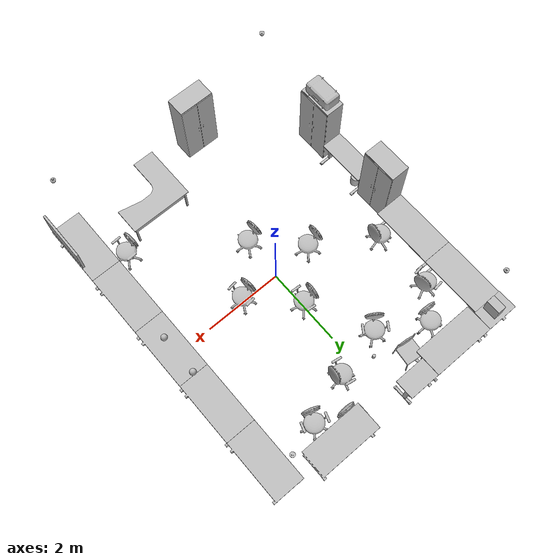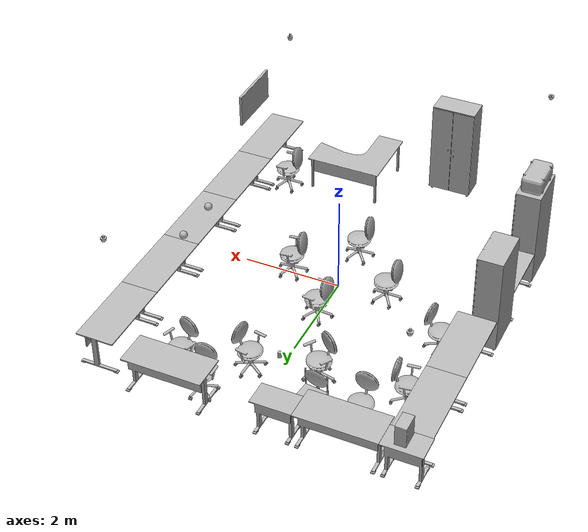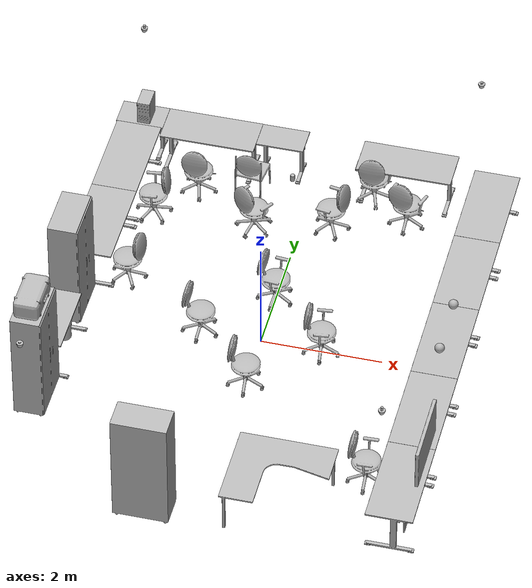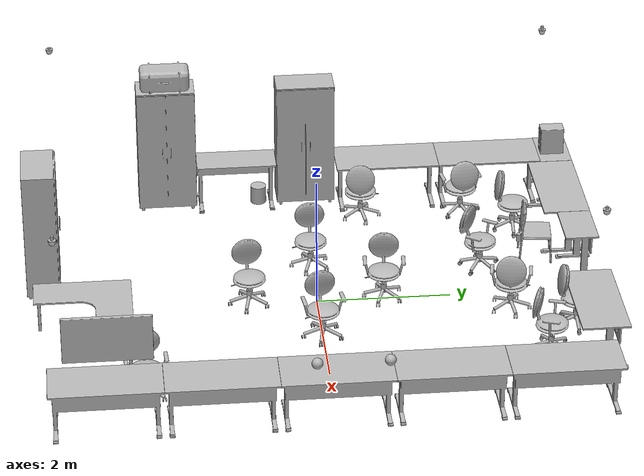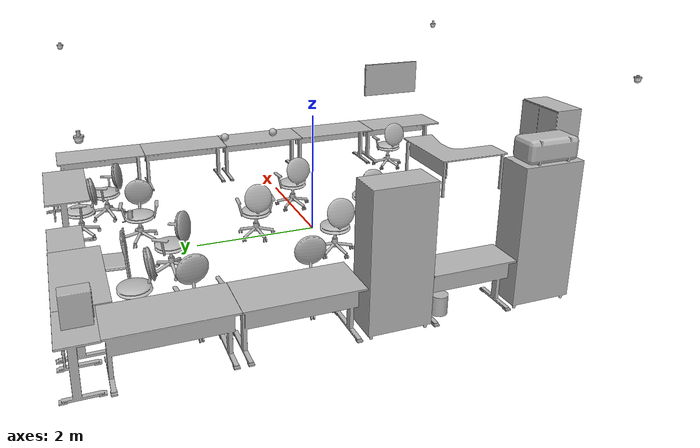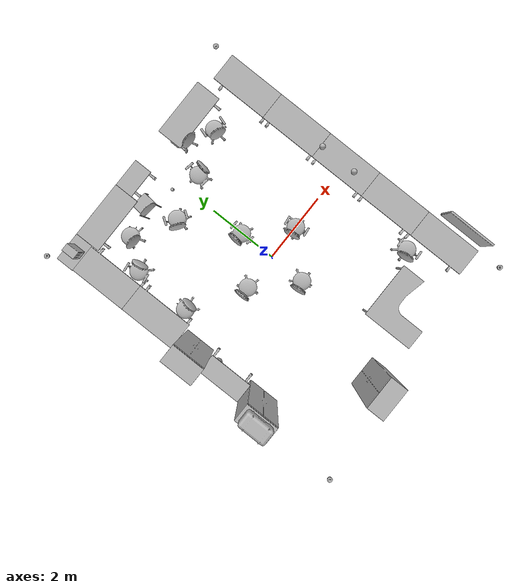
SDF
<sdf version="1.9">
 <world name="labsea">
  <gravity>0 0 -9.8</gravity>
  <physics name="semantic_hall_physics" type="ignored">
   <max_step_size>0.005</max_step_size>
   <real_time_factor>1.0</real_time_factor>
  </physics>
  <plugin filename="gz-sim-physics-system" name="gz::sim::systems::Physics"/>
  <plugin filename="gz-sim-user-commands-system" name="gz::sim::systems::UserCommands"/>
  <plugin filename="gz-sim-scene-broadcaster-system" name="gz::sim::systems::SceneBroadcaster"/>
  <plugin filename="gz-sim-sensors-system" name="gz::sim::systems::Sensors">
   <render_engine>ogre2</render_engine>
  </plugin>
  <light type="directional" name="sun">
   <pose>0 0 10 0 0 0</pose>
   <diffuse>0.95 0.95 0.95 1</diffuse>
   <direction>-0.4 0.2 -1</direction>
  </light>
  <scene><ambient>0.4 0.4 0.4 1</ambient><background>0.7 0.75 0.8 1</background></scene>
  <model name="Ball_001">
   <static>true</static>
   <pose>2.99 -0.27 0.75 0 0 0</pose>
   <link name="body">
    <visual name="visual">
     <geometry><mesh><uri>model://robis_labsea/meshes/Ball_001.obj</uri></mesh></geometry>
    </visual>
    <collision name="collision">
     <geometry><mesh><uri>model://robis_labsea/meshes/Ball_001.obj</uri></mesh></geometry>
    </collision>
   </link>
  </model>
  <model name="Ball_002">
   <static>true</static>
   <pose>2.99 -0.27 0.75 0 0 0</pose>
   <link name="body">
    <visual name="visual">
     <geometry><mesh><uri>model://robis_labsea/meshes/Ball_002.obj</uri></mesh></geometry>
    </visual>
    <collision name="collision">
     <geometry><mesh><uri>model://robis_labsea/meshes/Ball_002.obj</uri></mesh></geometry>
    </collision>
   </link>
  </model>
  <model name="Bin_001">
   <static>true</static>
   <pose>-3.318271 -0.4892448 0 0 0 0</pose>
   <link name="body">
    <visual name="visual">
     <geometry><mesh><uri>model://robis_labsea/meshes/Bin_001.obj</uri></mesh></geometry>
    </visual>
    <collision name="collision">
     <geometry><mesh><uri>model://robis_labsea/meshes/Bin_001.obj</uri></mesh></geometry>
    </collision>
   </link>
  </model>
  <model name="Cabinet_001">
   <static>true</static>
   <pose>-3.18 -2.06 0 0 0 1.570796</pose>
   <link name="body">
    <visual name="visual">
     <geometry><mesh><uri>model://robis_labsea/meshes/Cabinet_001.obj</uri></mesh></geometry>
    </visual>
    <collision name="collision">
     <geometry><mesh><uri>model://robis_labsea/meshes/Cabinet_001.obj</uri></mesh></geometry>
    </collision>
   </link>
  </model>
  <model name="Cabinet_002">
   <static>true</static>
   <pose>-3.18 0.1021805 0 0 0 1.570796</pose>
   <link name="body">
    <visual name="visual">
     <geometry><mesh><uri>model://robis_labsea/meshes/Cabinet_002.obj</uri></mesh></geometry>
    </visual>
    <collision name="collision">
     <geometry><mesh><uri>model://robis_labsea/meshes/Cabinet_002.obj</uri></mesh></geometry>
    </collision>
   </link>
  </model>
  <model name="Cabinet_003">
   <static>true</static>
   <pose>-0.87 -4.04 0 0 0 -3.141593</pose>
   <link name="body">
    <visual name="visual">
     <geometry><mesh><uri>model://robis_labsea/meshes/Cabinet_003.obj</uri></mesh></geometry>
    </visual>
    <collision name="collision">
     <geometry><mesh><uri>model://robis_labsea/meshes/Cabinet_003.obj</uri></mesh></geometry>
    </collision>
   </link>
  </model>
  <model name="CameraModel_001">
   <static>true</static>
   <pose>2.73679 3.698505 2.86764 0 0 0</pose>
   <link name="body">
    <visual name="visual">
     <geometry><mesh><uri>model://robis_labsea/meshes/CameraModel_001.obj</uri></mesh></geometry>
    </visual>
    <collision name="collision">
     <geometry><mesh><uri>model://robis_labsea/meshes/CameraModel_001.obj</uri></mesh></geometry>
    </collision>
   </link>
  </model>
  <model name="CameraModel_002">
   <static>true</static>
   <pose>-2.878442 3.732167 2.850206 0 0 0</pose>
   <link name="body">
    <visual name="visual">
     <geometry><mesh><uri>model://robis_labsea/meshes/CameraModel_002.obj</uri></mesh></geometry>
    </visual>
    <collision name="collision">
     <geometry><mesh><uri>model://robis_labsea/meshes/CameraModel_002.obj</uri></mesh></geometry>
    </collision>
   </link>
  </model>
  <model name="CameraModel_003">
   <static>true</static>
   <pose>-2.836204 -3.776548 2.88513 0 0 0</pose>
   <link name="body">
    <visual name="visual">
     <geometry><mesh><uri>model://robis_labsea/meshes/CameraModel_003.obj</uri></mesh></geometry>
    </visual>
    <collision name="collision">
     <geometry><mesh><uri>model://robis_labsea/meshes/CameraModel_003.obj</uri></mesh></geometry>
    </collision>
   </link>
  </model>
  <model name="CameraModel_004">
   <static>true</static>
   <pose>2.826685 -3.80825 2.8425 0 0 0</pose>
   <link name="body">
    <visual name="visual">
     <geometry><mesh><uri>model://robis_labsea/meshes/CameraModel_004.obj</uri></mesh></geometry>
    </visual>
    <collision name="collision">
     <geometry><mesh><uri>model://robis_labsea/meshes/CameraModel_004.obj</uri></mesh></geometry>
    </collision>
   </link>
  </model>
  <model name="Chair_001">
   <static>true</static>
   <pose>1 0 0 0 0 -1.448624</pose>
   <link name="body">
    <visual name="visual">
     <geometry><mesh><uri>model://robis_labsea/meshes/Chair_001.obj</uri></mesh></geometry>
    </visual>
    <collision name="collision">
     <geometry><mesh><uri>model://robis_labsea/meshes/Chair_001.obj</uri></mesh></geometry>
    </collision>
   </link>
   <plugin filename="gz-sim-label-system" name="gz::sim::systems::Label"><label>1</label></plugin>
  </model>
  <model name="Chair_002">
   <static>true</static>
   <pose>-1 0 0 0 0 -1.58825</pose>
   <link name="body">
    <visual name="visual">
     <geometry><mesh><uri>model://robis_labsea/meshes/Chair_002.obj</uri></mesh></geometry>
    </visual>
    <collision name="collision">
     <geometry><mesh><uri>model://robis_labsea/meshes/Chair_002.obj</uri></mesh></geometry>
    </collision>
   </link>
   <plugin filename="gz-sim-label-system" name="gz::sim::systems::Label"><label>1</label></plugin>
  </model>
  <model name="Chair_003">
   <static>true</static>
   <pose>0 1 0 0 0 -1.658063</pose>
   <link name="body">
    <visual name="visual">
     <geometry><mesh><uri>model://robis_labsea/meshes/Chair_003.obj</uri></mesh></geometry>
    </visual>
    <collision name="collision">
     <geometry><mesh><uri>model://robis_labsea/meshes/Chair_003.obj</uri></mesh></geometry>
    </collision>
   </link>
   <plugin filename="gz-sim-label-system" name="gz::sim::systems::Label"><label>1</label></plugin>
  </model>
  <model name="Chair_004">
   <static>true</static>
   <pose>0 -1 0 0 0 -1.48353</pose>
   <link name="body">
    <visual name="visual">
     <geometry><mesh><uri>model://robis_labsea/meshes/Chair_004.obj</uri></mesh></geometry>
    </visual>
    <collision name="collision">
     <geometry><mesh><uri>model://robis_labsea/meshes/Chair_004.obj</uri></mesh></geometry>
    </collision>
   </link>
   <plugin filename="gz-sim-label-system" name="gz::sim::systems::Label"><label>1</label></plugin>
  </model>
  <model name="Chair_005">
   <static>true</static>
   <pose>2.3475 -2.6183 0 0 0 -1.518436</pose>
   <link name="body">
    <visual name="visual">
     <geometry><mesh><uri>model://robis_labsea/meshes/Chair_005.obj</uri></mesh></geometry>
    </visual>
    <collision name="collision">
     <geometry><mesh><uri>model://robis_labsea/meshes/Chair_005.obj</uri></mesh></geometry>
    </collision>
   </link>
   <plugin filename="gz-sim-label-system" name="gz::sim::systems::Label"><label>1</label></plugin>
  </model>
  <model name="Chair_006">
   <static>true</static>
   <pose>-1.8637 3.2168 0 0 0 -0.05235988</pose>
   <link name="body">
    <visual name="visual">
     <geometry><mesh><uri>model://robis_labsea/meshes/Chair_006.obj</uri></mesh></geometry>
    </visual>
    <collision name="collision">
     <geometry><mesh><uri>model://robis_labsea/meshes/Chair_006.obj</uri></mesh></geometry>
    </collision>
   </link>
   <plugin filename="gz-sim-label-system" name="gz::sim::systems::Label"><label>1</label></plugin>
  </model>
  <model name="Chair_007">
   <static>true</static>
   <pose>1.01 3.72 0 0 0 0</pose>
   <link name="body">
    <visual name="visual">
     <geometry><mesh><uri>model://robis_labsea/meshes/Chair_007.obj</uri></mesh></geometry>
    </visual>
    <collision name="collision">
     <geometry><mesh><uri>model://robis_labsea/meshes/Chair_007.obj</uri></mesh></geometry>
    </collision>
   </link>
   <plugin filename="gz-sim-label-system" name="gz::sim::systems::Label"><label>1</label></plugin>
  </model>
  <model name="Chair_008">
   <static>true</static>
   <pose>1.672727 3.2424 0 0 0 -0.3141593</pose>
   <link name="body">
    <visual name="visual">
     <geometry><mesh><uri>model://robis_labsea/meshes/Chair_008.obj</uri></mesh></geometry>
    </visual>
    <collision name="collision">
     <geometry><mesh><uri>model://robis_labsea/meshes/Chair_008.obj</uri></mesh></geometry>
    </collision>
   </link>
   <plugin filename="gz-sim-label-system" name="gz::sim::systems::Label"><label>1</label></plugin>
  </model>
  <model name="Chair_009">
   <static>true</static>
   <pose>-2.4612 0.9149 0 0 0 1.448624</pose>
   <link name="body">
    <visual name="visual">
     <geometry><mesh><uri>model://robis_labsea/meshes/Chair_009.obj</uri></mesh></geometry>
    </visual>
    <collision name="collision">
     <geometry><mesh><uri>model://robis_labsea/meshes/Chair_009.obj</uri></mesh></geometry>
    </collision>
   </link>
   <plugin filename="gz-sim-label-system" name="gz::sim::systems::Label"><label>1</label></plugin>
  </model>
  <model name="Chair_010">
   <static>true</static>
   <pose>-2.4422 2.48 0 0 0 1.692969</pose>
   <link name="body">
    <visual name="visual">
     <geometry><mesh><uri>model://robis_labsea/meshes/Chair_010.obj</uri></mesh></geometry>
    </visual>
    <collision name="collision">
     <geometry><mesh><uri>model://robis_labsea/meshes/Chair_010.obj</uri></mesh></geometry>
    </collision>
   </link>
   <plugin filename="gz-sim-label-system" name="gz::sim::systems::Label"><label>1</label></plugin>
  </model>
  <model name="Chair_011">
   <static>true</static>
   <pose>-0.7527 2.5456 0 0 0 -0.5934119</pose>
   <link name="body">
    <visual name="visual">
     <geometry><mesh><uri>model://robis_labsea/meshes/Chair_011.obj</uri></mesh></geometry>
    </visual>
    <collision name="collision">
     <geometry><mesh><uri>model://robis_labsea/meshes/Chair_011.obj</uri></mesh></geometry>
    </collision>
   </link>
   <plugin filename="gz-sim-label-system" name="gz::sim::systems::Label"><label>1</label></plugin>
  </model>
  <model name="Chair_012">
   <static>true</static>
   <pose>0.4889609 2.826878 0 0 0 1.396264</pose>
   <link name="body">
    <visual name="visual">
     <geometry><mesh><uri>model://robis_labsea/meshes/Chair_012.obj</uri></mesh></geometry>
    </visual>
    <collision name="collision">
     <geometry><mesh><uri>model://robis_labsea/meshes/Chair_012.obj</uri></mesh></geometry>
    </collision>
   </link>
   <plugin filename="gz-sim-label-system" name="gz::sim::systems::Label"><label>1</label></plugin>
  </model>
  <model name="Chair_013">
   <static>true</static>
   <pose>-0.9966 3.439415 0 0 0 -0.1068814</pose>
   <link name="body">
    <visual name="visual">
     <geometry><mesh><uri>model://robis_labsea/meshes/Chair_013.obj</uri></mesh></geometry>
    </visual>
    <collision name="collision">
     <geometry><mesh><uri>model://robis_labsea/meshes/Chair_013.obj</uri></mesh></geometry>
    </collision>
   </link>
   <plugin filename="gz-sim-label-system" name="gz::sim::systems::Label"><label>1</label></plugin>
  </model>
  <model name="Computer_002">
   <static>true</static>
   <pose>-2.96 3.98 0.75 0 0 0</pose>
   <link name="body">
    <visual name="visual">
     <geometry><mesh><uri>model://robis_labsea/meshes/Computer_002.obj</uri></mesh></geometry>
    </visual>
    <collision name="collision">
     <geometry><mesh><uri>model://robis_labsea/meshes/Computer_002.obj</uri></mesh></geometry>
    </collision>
   </link>
  </model>
  <model name="Cup_001">
   <static>true</static>
   <pose>-0.22 3.04 0.75 0 0 0</pose>
   <link name="body">
    <visual name="visual">
     <geometry><mesh><uri>model://robis_labsea/meshes/Cup_001.obj</uri></mesh></geometry>
    </visual>
    <collision name="collision">
     <geometry><mesh><uri>model://robis_labsea/meshes/Cup_001.obj</uri></mesh></geometry>
    </collision>
   </link>
  </model>
  <model name="Desk_East_01">
   <static>true</static>
   <pose>3.02 3.2 0 0 0 -1.570796</pose>
   <link name="body">
    <visual name="visual">
     <geometry><mesh><uri>model://robis_labsea/meshes/Desk_East_01.obj</uri></mesh></geometry>
    </visual>
    <collision name="collision">
     <geometry><mesh><uri>model://robis_labsea/meshes/Desk_East_01.obj</uri></mesh></geometry>
    </collision>
   </link>
   <plugin filename="gz-sim-label-system" name="gz::sim::systems::Label"><label>3</label></plugin>
  </model>
  <model name="Desk_East_02">
   <static>true</static>
   <pose>3.02 1.6 0 0 0 -1.570796</pose>
   <link name="body">
    <visual name="visual">
     <geometry><mesh><uri>model://robis_labsea/meshes/Desk_East_02.obj</uri></mesh></geometry>
    </visual>
    <collision name="collision">
     <geometry><mesh><uri>model://robis_labsea/meshes/Desk_East_02.obj</uri></mesh></geometry>
    </collision>
   </link>
   <plugin filename="gz-sim-label-system" name="gz::sim::systems::Label"><label>3</label></plugin>
  </model>
  <model name="Desk_East_03">
   <static>true</static>
   <pose>3.02 0 0 0 0 -1.570796</pose>
   <link name="body">
    <visual name="visual">
     <geometry><mesh><uri>model://robis_labsea/meshes/Desk_East_03.obj</uri></mesh></geometry>
    </visual>
    <collision name="collision">
     <geometry><mesh><uri>model://robis_labsea/meshes/Desk_East_03.obj</uri></mesh></geometry>
    </collision>
   </link>
   <plugin filename="gz-sim-label-system" name="gz::sim::systems::Label"><label>3</label></plugin>
  </model>
  <model name="Desk_East_04">
   <static>true</static>
   <pose>3.02 -1.6 0 0 0 -1.570796</pose>
   <link name="body">
    <visual name="visual">
     <geometry><mesh><uri>model://robis_labsea/meshes/Desk_East_04.obj</uri></mesh></geometry>
    </visual>
    <collision name="collision">
     <geometry><mesh><uri>model://robis_labsea/meshes/Desk_East_04.obj</uri></mesh></geometry>
    </collision>
   </link>
   <plugin filename="gz-sim-label-system" name="gz::sim::systems::Label"><label>3</label></plugin>
  </model>
  <model name="Desk_East_05">
   <static>true</static>
   <pose>3.02 -3.2 0 0 0 -1.570796</pose>
   <link name="body">
    <visual name="visual">
     <geometry><mesh><uri>model://robis_labsea/meshes/Desk_East_05.obj</uri></mesh></geometry>
    </visual>
    <collision name="collision">
     <geometry><mesh><uri>model://robis_labsea/meshes/Desk_East_05.obj</uri></mesh></geometry>
    </collision>
   </link>
   <plugin filename="gz-sim-label-system" name="gz::sim::systems::Label"><label>3</label></plugin>
  </model>
  <model name="Desk_L_001">
   <static>true</static>
   <pose>1.147 -3.46 0 0 0 0</pose>
   <link name="body">
    <visual name="visual">
     <geometry><mesh><uri>model://robis_labsea/meshes/Desk_L_001.obj</uri></mesh></geometry>
    </visual>
    <collision name="collision">
     <geometry><mesh><uri>model://robis_labsea/meshes/Desk_L_001.obj</uri></mesh></geometry>
    </collision>
   </link>
   <plugin filename="gz-sim-label-system" name="gz::sim::systems::Label"><label>3</label></plugin>
  </model>
  <model name="Desk_North_01">
   <static>true</static>
   <pose>-1.82 3.91 0 0 0 0</pose>
   <link name="body">
    <visual name="visual">
     <geometry><mesh><uri>model://robis_labsea/meshes/Desk_North_01.obj</uri></mesh></geometry>
    </visual>
    <collision name="collision">
     <geometry><mesh><uri>model://robis_labsea/meshes/Desk_North_01.obj</uri></mesh></geometry>
    </collision>
   </link>
   <plugin filename="gz-sim-label-system" name="gz::sim::systems::Label"><label>3</label></plugin>
  </model>
  <model name="Desk_North_02">
   <static>true</static>
   <pose>1.52 3.91 0 0 0 0</pose>
   <link name="body">
    <visual name="visual">
     <geometry><mesh><uri>model://robis_labsea/meshes/Desk_North_02.obj</uri></mesh></geometry>
    </visual>
    <collision name="collision">
     <geometry><mesh><uri>model://robis_labsea/meshes/Desk_North_02.obj</uri></mesh></geometry>
    </collision>
   </link>
   <plugin filename="gz-sim-label-system" name="gz::sim::systems::Label"><label>3</label></plugin>
  </model>
  <model name="Desk_North_03">
   <static>true</static>
   <pose>-3.02 4.009217 0 0 0 0</pose>
   <link name="body">
    <visual name="visual">
     <geometry><mesh><uri>model://robis_labsea/meshes/Desk_North_03.obj</uri></mesh></geometry>
    </visual>
    <collision name="collision">
     <geometry><mesh><uri>model://robis_labsea/meshes/Desk_North_03.obj</uri></mesh></geometry>
    </collision>
   </link>
   <plugin filename="gz-sim-label-system" name="gz::sim::systems::Label"><label>3</label></plugin>
  </model>
  <model name="Desk_North_04">
   <static>true</static>
   <pose>-0.62 4.006224 0 0 0 0</pose>
   <link name="body">
    <visual name="visual">
     <geometry><mesh><uri>model://robis_labsea/meshes/Desk_North_04.obj</uri></mesh></geometry>
    </visual>
    <collision name="collision">
     <geometry><mesh><uri>model://robis_labsea/meshes/Desk_North_04.obj</uri></mesh></geometry>
    </collision>
   </link>
   <plugin filename="gz-sim-label-system" name="gz::sim::systems::Label"><label>3</label></plugin>
  </model>
  <model name="Desk_West_01">
   <static>true</static>
   <pose>-3.025 1.36865 0 0 0 1.570796</pose>
   <link name="body">
    <visual name="visual">
     <geometry><mesh><uri>model://robis_labsea/meshes/Desk_West_01.obj</uri></mesh></geometry>
    </visual>
    <collision name="collision">
     <geometry><mesh><uri>model://robis_labsea/meshes/Desk_West_01.obj</uri></mesh></geometry>
    </collision>
   </link>
   <plugin filename="gz-sim-label-system" name="gz::sim::systems::Label"><label>3</label></plugin>
  </model>
  <model name="Desk_West_02">
   <static>true</static>
   <pose>-3.025 2.96815 0 0 0 1.570796</pose>
   <link name="body">
    <visual name="visual">
     <geometry><mesh><uri>model://robis_labsea/meshes/Desk_West_02.obj</uri></mesh></geometry>
    </visual>
    <collision name="collision">
     <geometry><mesh><uri>model://robis_labsea/meshes/Desk_West_02.obj</uri></mesh></geometry>
    </collision>
   </link>
   <plugin filename="gz-sim-label-system" name="gz::sim::systems::Label"><label>3</label></plugin>
  </model>
  <model name="Desk_west_coffe">
   <static>true</static>
   <pose>-3.040938 -0.9964975 0 0 0 1.570796</pose>
   <link name="body">
    <visual name="visual">
     <geometry><mesh><uri>model://robis_labsea/meshes/Desk_west_coffe.obj</uri></mesh></geometry>
    </visual>
    <collision name="collision">
     <geometry><mesh><uri>model://robis_labsea/meshes/Desk_west_coffe.obj</uri></mesh></geometry>
    </collision>
   </link>
   <plugin filename="gz-sim-label-system" name="gz::sim::systems::Label"><label>3</label></plugin>
  </model>
  <model name="Display_Wall_001">
   <static>true</static>
   <pose>3.39 -3.15 1.31 0 0 -1.570796</pose>
   <link name="body">
    <visual name="visual">
     <geometry><mesh><uri>model://robis_labsea/meshes/Display_Wall_001.obj</uri></mesh></geometry>
    </visual>
    <collision name="collision">
     <geometry><mesh><uri>model://robis_labsea/meshes/Display_Wall_001.obj</uri></mesh></geometry>
    </collision>
   </link>
  </model>
  <model name="EquipmentCase_001">
   <static>true</static>
   <pose>-3.18 -2.06 2.05 0 0 1.570796</pose>
   <link name="body">
    <visual name="visual">
     <geometry><mesh><uri>model://robis_labsea/meshes/EquipmentCase_001.obj</uri></mesh></geometry>
    </visual>
    <collision name="collision">
     <geometry><mesh><uri>model://robis_labsea/meshes/EquipmentCase_001.obj</uri></mesh></geometry>
    </collision>
   </link>
  </model>
 </world>
</sdf>
